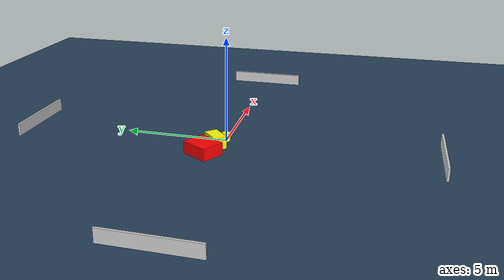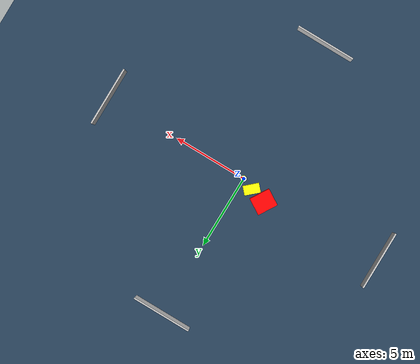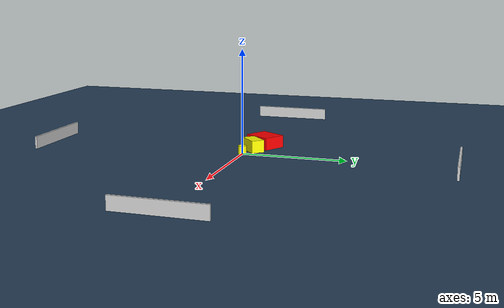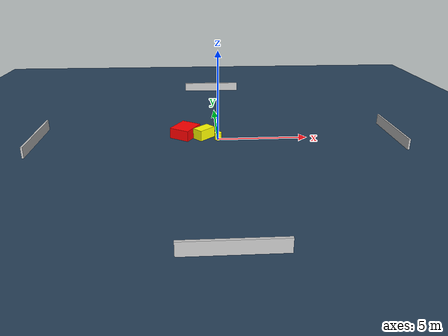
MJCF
<?xml version="1.0" ?>
<mujoco model="generated_environment">
  <option timestep="0.01" integrator="RK4" cone="elliptic"/>
  <default>
    <geom density="1"/>
  </default>
  <asset>
    <texture builtin="gradient" height="3072" name="skybox" rgb1="0.3 0.5 0.7" rgb2="0 0 0" type="skybox" width="512"/>
    <texture builtin="checker" height="300" name="groundplane" rgb1="0.2 0.3 0.4" rgb2="0.1 0.2 0.3" type="2d" width="300"/>
    <material name="groundplane" reflectance="0.2" texrepeat="5 5" texture="groundplane"/>
  </asset>
  <worldbody>
    <light dir="0 0 -1" directional="true" pos="0 0 1.5"/>
    <geom condim="3" friction="0.5 0.005 0.001" material="groundplane" name="floor" pos="0 0 0" size="0 0 0.05" type="plane"/>
    <body name="walls">
      <geom name="wall_1" condim="4" pos="-10.0 0.0 0.3" rgba="0.800000011920929 0.800000011920929 0.800000011920929 1.0" size="0.05 2.0 0.3" type="box"/>
      <geom name="wall_2" condim="4" pos="10.0 0.0 0.3" rgba="0.800000011920929 0.800000011920929 0.800000011920929 1.0" size="0.05 2.0 0.3" type="box"/>
      <geom name="wall_3" condim="4" pos="0.0 -10.0 0.3" rgba="0.800000011920929 0.800000011920929 0.800000011920929 1.0" size="2.0 0.05 0.3" type="box"/>
      <geom name="wall_4" condim="4" pos="0.0 10.0 0.3" rgba="0.800000011920929 0.800000011920929 0.800000011920929 1.0" size="2.0 0.05 0.3" type="box"/>
    </body>
    <body name="robot">
      <joint name="joint_x" type="slide" pos="0 0 0" axis="1 0 0"/>
      <joint name="joint_y" type="slide" pos="0 0 0" axis="0 1 0"/>
      <geom name="robot" type="cylinder" pos="0.0 0.0 0.2" size="0.2 0.2 0.0" mass="5.0" friction="1.0 0.005 0.0001" condim="4" rgba="1.0 1.0 0.0 1.0"/>
    </body>
    <body name="obstacle_1_movable">
      <geom name="obstacle_1_movable" condim="4" pos="-0.7828311879632643 0.3115780033730412 0.3" euler="0 0 312.44174787179304" friction="0.0 0.005 0.001" rgba="1.0 1.0 0.0 1.0" size="0.3139846228538097 0.5281888699761697 0.3" type="box" mass="0.1"/>
      <joint type="free"/>
    </body>
    <body name="obstacle_2_static">
      <geom name="obstacle_2_static" condim="4" pos="-1.8407541720495348 0.6087461405265289 0.3" euler="0 0 148.81549810609718" friction="0.0 0.005 0.001" rgba="1.0 0.0 0.0 1.0" size="0.5821997875842684 0.6865078739127821 0.3" type="box"/>
    </body>
  </worldbody>
  <actuator>
    <motor name="actuator_x" joint="joint_x" gear="1" ctrlrange="-1 1"/>
    <motor name="actuator_y" joint="joint_y" gear="1" ctrlrange="-1 1"/>
  </actuator>
</mujoco>
